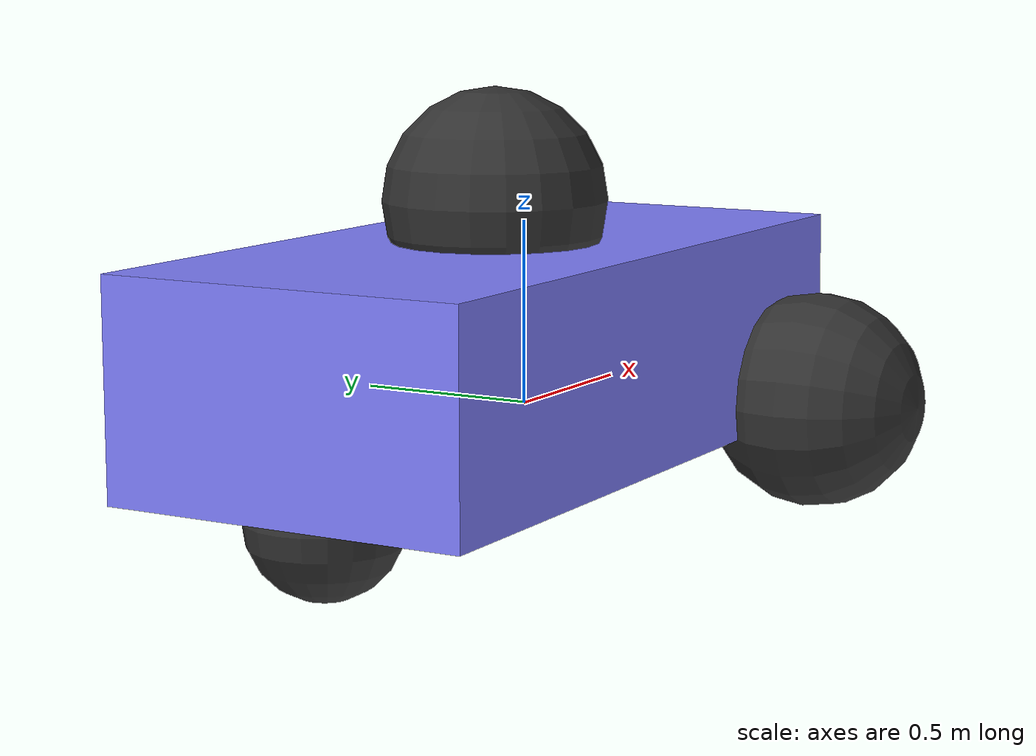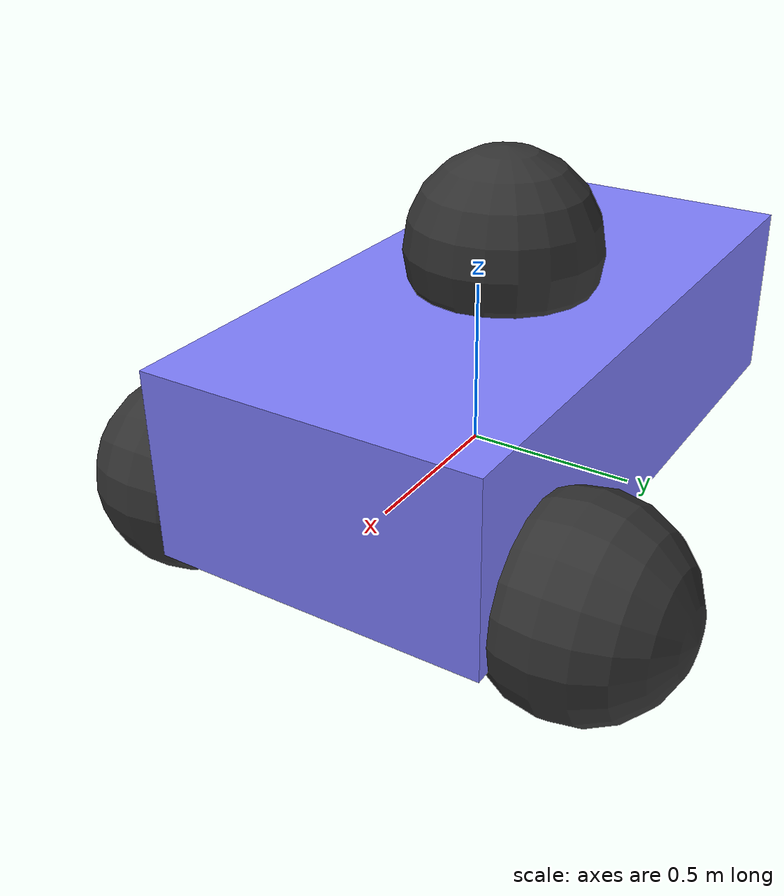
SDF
<?xml version="1.0" ?>
<sdf version="1.8">
    <model name='diff_drive'>
      <link name='chassis'>
        <pose>-0.151427 -0 0.175 0 -0 0</pose>
        <inertial>
          <mass>1.14395</mass>
          <inertia>
            <ixx>0.126164</ixx>
            <ixy>0</ixy>
            <ixz>0</ixz>
            <iyy>0.416519</iyy>
            <iyz>0</iyz>
            <izz>0.481014</izz>
          </inertia>
        </inertial>
        <visual name='visual_chassis'>
          <geometry>
            <box>
              <size>2.01142 1 0.568726</size>
            </box>
          </geometry>
          <material>
            <ambient>0.5 0.5 1.0 1</ambient>
            <diffuse>0.5 0.5 1.0 1</diffuse>
            <specular>0.0 0.0 1.0 1</specular>
          </material>
        </visual>
        <collision name='collision_chassis'>
          <geometry>
            <box>
              <size>2.01142 1 0.568726</size>
            </box>
          </geometry>
        </collision>
        <sensor name="imu_sensor" type="imu">
          <always_on>1</always_on>
          <update_rate>1</update_rate>
          <visualize>true</visualize>
          <topic>imu</topic>
        </sensor>
      </link>

      <link name='tank_tower'>
        <pose>-0.151427 -0 0.568726 0 -0 0</pose>
        <inertial>
          <mass>2</mass>
          <inertia>
            <ixx>0.145833</ixx>
            <ixy>0</ixy>
            <ixz>0</ixz>
            <iyy>0.145833</iyy>
            <iyz>0</iyz>
            <izz>0.125</izz>
          </inertia>
        </inertial>
        <visual name='visual_left_wheel'>
          <geometry>
            <sphere>
              <radius>0.3</radius>
            </sphere>
          </geometry>
          <material>
            <ambient>0.2 0.2 0.2 1</ambient>
            <diffuse>0.2 0.2 0.2 1</diffuse>
            <specular>0.2 0.2 0.2 1</specular>
          </material>
        </visual>
        <collision name='collision_left_wheel'>
          <geometry>
            <sphere>
              <radius>0.3</radius>
            </sphere>
          </geometry>
        </collision>
      </link>

      <link name='left_wheel'>
        <pose>0.554283 0.625029 -0.025 -1.5707 0 0</pose>
        <inertial>
          <mass>2</mass>
          <inertia>
            <ixx>0.145833</ixx>
            <ixy>0</ixy>
            <ixz>0</ixz>
            <iyy>0.145833</iyy>
            <iyz>0</iyz>
            <izz>0.125</izz>
          </inertia>
        </inertial>
        <visual name='visual_left_wheel'>
          <geometry>
            <sphere>
              <radius>0.3</radius>
            </sphere>
          </geometry>
          <material>
            <ambient>0.2 0.2 0.2 1</ambient>
            <diffuse>0.2 0.2 0.2 1</diffuse>
            <specular>0.2 0.2 0.2 1</specular>
          </material>
        </visual>
        <collision name='collision_left_wheel'>
          <geometry>
            <sphere>
              <radius>0.3</radius>
            </sphere>
          </geometry>
        </collision>
      </link>

      <link name='right_wheel'>
        <pose>0.554282 -0.625029 -0.025 -1.5707 0 0</pose>
        <inertial>
          <mass>2</mass>
          <inertia>
            <ixx>0.145833</ixx>
            <ixy>0</ixy>
            <ixz>0</ixz>
            <iyy>0.145833</iyy>
            <iyz>0</iyz>
            <izz>0.125</izz>
          </inertia>
        </inertial>
        <visual name='visual_right_wheel'>
          <geometry>
            <sphere>
              <radius>0.3</radius>
            </sphere>
          </geometry>
          <material>
            <ambient>0.2 0.2 0.2 1</ambient>
            <diffuse>0.2 0.2 0.2 1</diffuse>
            <specular>0.2 0.2 0.2 1</specular>
          </material>
        </visual>
        <collision name='collision_right_wheel'>
          <geometry>
            <sphere>
              <radius>0.3</radius>
            </sphere>
          </geometry>
        </collision>
      </link>

      <link name='caster'>
        <pose>-0.957138 -0 -0.125 0 -0 0</pose>
        <inertial>
          <mass>1</mass>
          <inertia>
            <ixx>0.1</ixx>
            <ixy>0</ixy>
            <ixz>0</ixz>
            <iyy>0.1</iyy>
            <iyz>0</iyz>
            <izz>0.1</izz>
          </inertia>
        </inertial>
        <visual name='visual_caster'>
          <geometry>
            <sphere>
              <radius>0.2</radius>
            </sphere>
          </geometry>
          <material>
            <ambient>0.2 0.2 0.2 1</ambient>
            <diffuse>0.2 0.2 0.2 1</diffuse>
            <specular>0.2 0.2 0.2 1</specular>
          </material>
        </visual>
        <collision name='collision_caster'>
          <geometry>
            <sphere>
              <radius>0.2</radius>
            </sphere>
          </geometry>
        </collision>
      </link>

      <link name="lidar_link">
        <pose>0 0 0.5 0 0 0</pose>
        <inertial>
          <mass>0.1</mass>
          <inertia>
            <ixx>0.000166667</ixx>
            <iyy>0.000166667</iyy>
            <izz>0.000166667</izz>
          </inertia>
        </inertial>
        <collision name="collision">
          <geometry>
            <box>
              <size>0.1 0.1 0.1</size>
            </box>
          </geometry>
        </collision>
        <visual name="visual">
          <geometry>
            <box>
              <size>0.1 0.1 0.1</size>
            </box>
          </geometry>
        </visual>
        <sensor name='gpu_lidar' type='gpu_lidar'>
          <pose>0 0 0 0 0 0</pose>
          <topic>scan</topic>
          <ignition_frame_id>diff_drive/lidar_link</ignition_frame_id>
          <update_rate>10</update_rate>
          <lidar>
            <scan>
              <horizontal>
                <samples>640</samples>
                <resolution>1</resolution>
                <min_angle>-1.396263</min_angle>
                <max_angle>1.396263</max_angle>
              </horizontal>
              <vertical>
                <samples>1</samples>
                <resolution>1</resolution>
                <min_angle>0.0</min_angle>
                <max_angle>0.0</max_angle>
              </vertical>
            </scan>
            <range>
              <min>0.08</min>
              <max>10.0</max>
              <resolution>0.01</resolution>
            </range>
          </lidar>
          <visualize>true</visualize>
        </sensor>
      </link>

      <joint name='lidar_joint' type='fixed'>
        <parent>chassis</parent>
        <child>lidar_link</child>
      </joint>

      <joint name='tank_tower_joint' type='revolute'>
        <pose relative_to='chassis'>-0.151427 -0 0.568726 0 -0 0</pose>
        <parent>chassis</parent>
        <child>tank_tower</child>
        <axis>
          <xyz>0 1 0</xyz>
          <limit>
            <lower>-1.79769e+308</lower>
            <upper>1.79769e+308</upper>
          </limit>
        </axis>
        <dynamics>
          <damping>0.7</damping>
          <friction>0.0</friction>
          <spring_reference>0</spring_reference>
          <spring_stiffness>0</spring_stiffness>
        </dynamics>
      </joint>

      <joint name='left_wheel_joint' type='revolute'>
        <parent>chassis</parent>
        <child>left_wheel</child>
        <axis>
          <xyz>0 0 1</xyz>
          <limit>
            <lower>-1.79769e+308</lower>
            <upper>1.79769e+308</upper>
          </limit>
        </axis>
      </joint>

      <joint name='right_wheel_joint' type='revolute'>
        <parent>chassis</parent>
        <child>right_wheel</child>
        <axis>
          <xyz>0 0 1</xyz>
          <limit>
            <lower>-1.79769e+308</lower>
            <upper>1.79769e+308</upper>
          </limit>
        </axis>
      </joint>

      <joint name='caster_wheel' type='ball'>
        <parent>chassis</parent>
        <child>caster</child>
      </joint>

      <plugin filename="gz-sim-imu-system"
        name="gz::sim::systems::Imu">
      </plugin>

      <plugin
        filename="ignition-gazebo-diff-drive-system"
        name="ignition::gazebo::systems::DiffDrive">
        <left_joint>left_wheel_joint</left_joint>
        <right_joint>right_wheel_joint</right_joint>
        <wheel_separation>1.25</wheel_separation>
        <wheel_radius>0.3</wheel_radius>
        <odom_publish_frequency>1</odom_publish_frequency>
        <max_linear_acceleration>1</max_linear_acceleration>
        <min_linear_acceleration>-1</min_linear_acceleration>
        <max_angular_acceleration>2</max_angular_acceleration>
        <min_angular_acceleration>-2</min_angular_acceleration>
        <max_linear_velocity>0.5</max_linear_velocity>
        <min_linear_velocity>-0.5</min_linear_velocity>
        <max_angular_velocity>1</max_angular_velocity>
        <min_angular_velocity>-1</min_angular_velocity>
      </plugin>
    </model>
</sdf>
